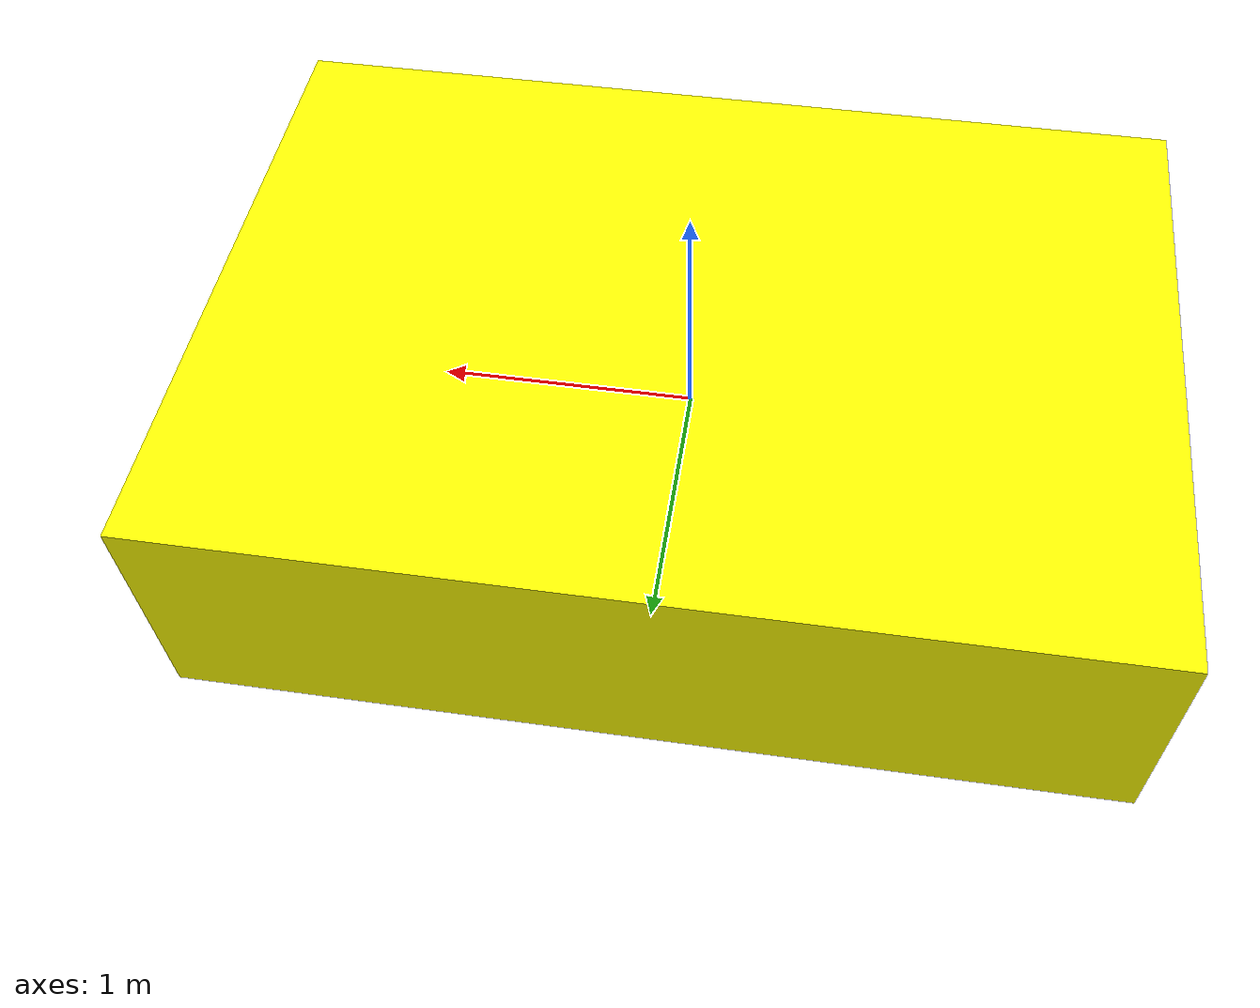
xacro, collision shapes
<?xml version="1.0"?>
<robot name="rov_max" xmlns:xacro="http://www.ros.org/wiki/xacro">

  <!-- ********* PROPERTIES ******** -->
  <xacro:property name="negligible" value="1e-5" />
  <xacro:property name="blade_geometry" value="0.015 0.02 .003" />

  <!-- ********* MATERIALS ********* -->
  <material name="LightBlue">
    <color rgba="0.678431 0.847059 0.901961 1.0"/>
  </material>

  <material name="MediumBlue">
    <color rgba="0.000000 0.000000 0.803922 1.0"/>
  </material>

  <material name="LightYellow">
    <color rgba="1.000000 1.000000 0.690196 1.0"/>
  </material>

  <material name="MediumYellow">
    <color rgba="1.000000 1.000000 0.000000 1.0"/>
  </material>

  <material name="Gray">
    <color rgba="0.7 0.7 0.7 1.0"/>
  </material>

  <material name="Black">
    <color rgba="0 0 0 1"/>
  </material>

  <material name="LightGreen">
    <color rgba="0.678431 1.000000 0.184314 1.0"/>
  </material>

  <material name="MediumGreen">
    <color rgba="0.000000 0.501961 0.000000 1.0"/>
  </material>

  <material name="Green">
    <color rgba="0.0 0.8 0.0 1.0"/>
  </material>

  <link name="rov_max_frame">
  </link>

  <!-- ********* CHASSIS *********** -->
  <link name="rov_max_shell">
    <visual>
      <!--The origin shift visually shifts the model to CAD model origin-->
      <origin xyz="1.5571 0.0016 0.0084" rpy="0 0 ${pi}" />
        .0175
      <geometry>
        <mesh filename="package://rov_description/models/rov_max/meshes/rov_max.stl" scale="0.01 0.01 0.01"/>
      </geometry>
      <material name="MediumYellow"/>
    </visual>
    <collision>
      <geometry>
	      <!--Bounding box for collision geometry used to decrease computational requirements.-->
        <box size="3.65 2.5 1"/>
      </geometry>
    </collision>
    <inertial>
      <mass value="13.2"/>
      <inertia ixx=".15" ixy="0.0" ixz="0.0" iyy=".66" iyz="0.0" izz=".53"/>
    </inertial>
  </link>

  <joint name="base_frame_to_shell" type="fixed">
    <parent link="rov_max_frame"/>
    <child link="rov_max_shell"/>
    <origin xyz="0 0 0"/>
  </joint>

  <!-- *********** CAMERA ********** -->
  <link name="camera">
    <origin xyz="0 0 0" rpy="0 0 0"/>
    <visual>
      <origin xyz="0.025223 0 0" rpy="0 0 0"/>
      <geometry>
        <box size="0.2 0.4 0.2"/>
      </geometry>
      <material name="Gray"/>
    </visual>
    <collision>
      <geometry>
        <box size="0.2 0.4 0.2"/>
      </geometry>
    </collision>
    <inertial>
      <mass value="${negligible}"/>
      <inertia ixx="${negligible}" ixy="0.00" ixz="0.00" iyy="${negligible}" iyz="0.00" izz="${negligible}"/>
    </inertial>
  </link>

  <joint name="shell_to_camera" type="fixed">
    <parent link="rov_max_shell"/>
    <child link="camera"/>
    <origin xyz="1.5571 0 0"/>
  </joint>

  <!-- **** VERTICAL THRUST LEFT *** -->
  <link name="vert_thrust_left">
    <origin xyz="0 0 0" rpy="0 0 0"/>

    <inertial>
      <mass value="${negligible}"/>
      <inertia ixx="${negligible}" ixy="0.00" ixz="0.00" iyy="${negligible}" iyz="0.00" izz="${negligible}"/>
    </inertial>

    <visual>
      <origin xyz="0 0 0" rpy="${pi/2} 0 0"/>
      <geometry>
        <mesh filename="package://rov_description/models/rov_max/meshes/t200-cw-prop.dae" scale="6 6 6"/>
      </geometry>
      <material name="Green"/>
    </visual>

    <collision>
      <geometry>
        <box size="${blade_geometry}"/>
      </geometry>
    </collision>

  </link>

  <joint name="shell_to_vert_thrust_left" type="continuous">
    <parent link="rov_max_shell"/>
    <child link="vert_thrust_left"/>
    <axis xyz="0 0 1"/>
    <origin xyz="1.08 0.71 0"/>
  </joint>

  <!-- *** VERTICAL THRUST RIGHT *** -->
  <link name="vert_thrust_right">
    <origin xyz="0 0 0" rpy="0 0 0"/>

    <inertial>
      <mass value="${negligible}"/>
      <inertia ixx="${negligible}" ixy="0.00" ixz="0.00" iyy="${negligible}" iyz="0.00" izz="${negligible}"/>
    </inertial>

    <visual>
      <origin xyz="0 0 0" rpy="${-pi/2} 0 0"/>
      <geometry>
        <mesh filename="package://rov_description/models/rov_max/meshes/t200-ccw-prop.dae" scale="6 6 6"/>
      </geometry>
      <material name="Green"/>
    </visual>

    <collision>
      <geometry>
        <box size="${blade_geometry}"/>
      </geometry>
    </collision>

  </link>

  <joint name="shell_to_vert_thrust_right" type="continuous">
    <parent link="rov_max_shell"/>
    <child link="vert_thrust_right"/>
    <axis xyz="0 0 1"/>
    <origin xyz="1.08 -0.71 0"/>
  </joint>

  <!-- ******* THRUSTER LEFT ******* -->
  <link name="left_thruster">
    <origin xyz="0 0 0" rpy="0 0 0"/>
    <inertial>
      <mass value="${negligible}"/>
      <inertia ixx="${negligible}" ixy="0.00" ixz="0.00" iyy="${negligible}" iyz="0.00" izz="${negligible}"/>
    </inertial>

    <visual>
      <origin xyz="0 0 0" rpy="${pi/2} 0 0"/>
      <geometry>
        <mesh filename="package://rov_description/models/rov_max/meshes/t200-ccw-prop.dae" scale="6 6 6"/>
      </geometry>
      <material name="Green"/>
    </visual>

    <collision>
      <geometry>
        <box size="${blade_geometry}"/>
      </geometry>
    </collision>

  </link>

  <joint name="shell_to_left_thrust" type="continuous">
    <parent link="rov_max_shell"/>
    <child link="left_thruster"/>
    <axis xyz="0 0 1"/>
    <origin xyz="-1.2429 0.75 0" rpy="0 ${pi/2} 0"/>
  </joint>

  <!-- ******* THRUSTER RIGHT ****** -->
  <link name="right_thruster">
    <origin xyz="0 0 0" rpy="0 0 0"/>
    <inertial>
      <mass value="${negligible}"/>
      <inertia ixx="${negligible}" ixy="0.00" ixz="0.00" iyy="${negligible}" iyz="0.00" izz="${negligible}"/>
    </inertial>

    <visual>
      <origin xyz="0 0 0" rpy="${pi/2} 0 0"/>
      <geometry>
        <mesh filename="package://rov_description/models/rov_max/meshes/t200-cw-prop.dae" scale="6 6 6"/>
      </geometry>
      <material name="Green"/>
    </visual>
    <collision>
      <geometry>
        <box size="${blade_geometry}"/>
      </geometry>
    </collision>
  </link>

  <joint name="shell_to_right_thrust" type="continuous">
    <parent link="rov_max_shell"/>
    <child link="right_thruster"/>
    <axis xyz="0 0 1"/>
    <origin xyz="-1.2429 -0.75 0" rpy="0 ${pi/2} 0"/>
  </joint>

</robot>
